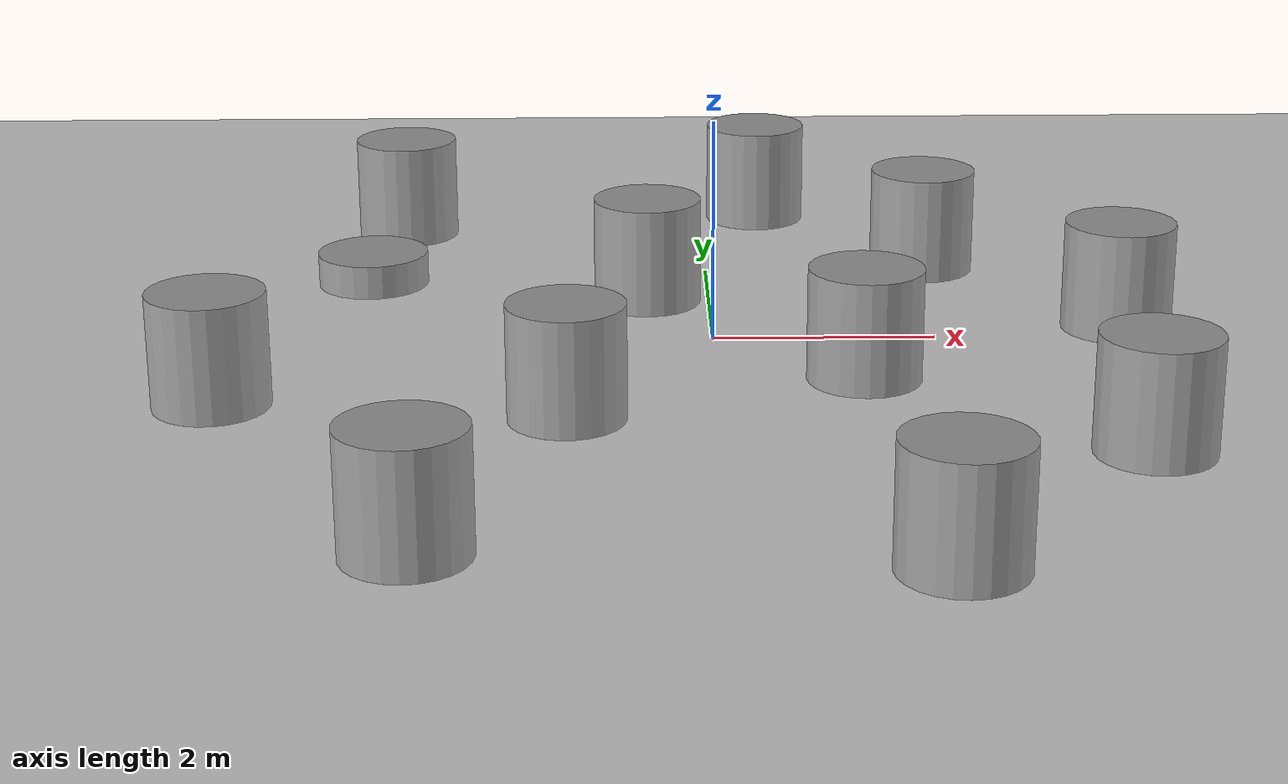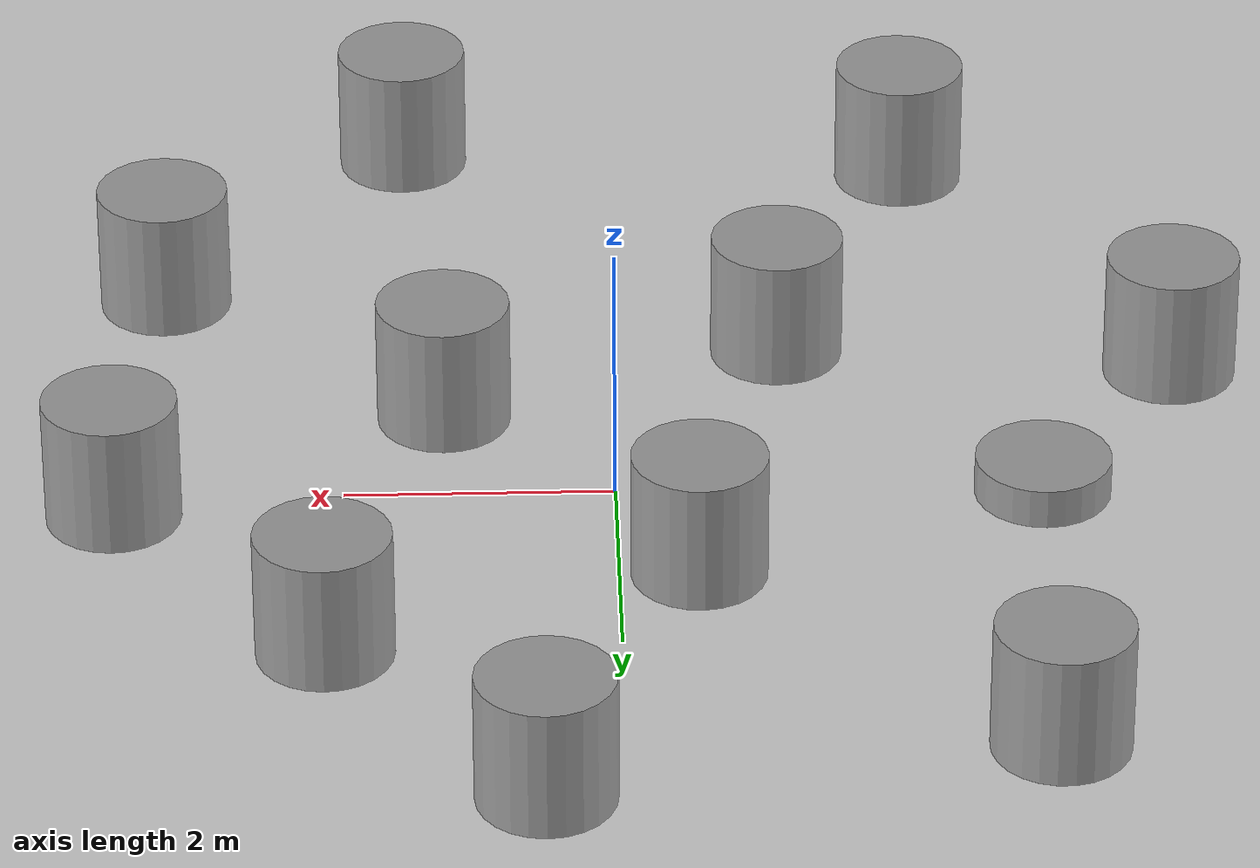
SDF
<sdf version="1.6">
 <world name="default">
  <light name="sun" type="directional">
   <pose>0 0 10 0 -0 0</pose>
   <diffuse>0.8 0.8 0.8 1</diffuse>
   <specular>0.2 0.2 0.2 1</specular>
   <attenuation>
    <range>1000</range>
    <constant>0.9</constant>
    <linear>0.01</linear>
    <quadratic>0.001</quadratic>
   </attenuation>
   <direction>-0.5 0.1 -0.9</direction>
  </light>
  <model name="ground_plane">
   <static>1</static>
   <link name="link">
    <collision name="collision">
     <geometry><plane><normal>0 0 1</normal><size>100 100</size></plane></geometry>
     <surface>
      <contact><collide_bitmask>65535</collide_bitmask></contact>
      <friction><ode><mu>100</mu><mu2>50</mu2></ode></friction>
     </surface>
    </collision>
    <visual name="visual">
     <cast_shadows>0</cast_shadows>
     <geometry><plane><normal>0 0 1</normal><size>100 100</size></plane></geometry>
     <material>
      <script><uri>file://media/materials/scripts/gazebo.material</uri><name>Gazebo/Grey</name></script>
     </material>
    </visual>
   </link>
  </model>
  <gravity>0 0 -9.8</gravity>
  <magnetic_field>6e-06 2.3e-05 -4.2e-05</magnetic_field>
  <atmosphere type="adiabatic"/>
  <physics name="default_physics" default="0" type="ode">
   <max_step_size>0.001</max_step_size>
   <real_time_factor>1</real_time_factor>
   <real_time_update_rate>1000</real_time_update_rate>
  </physics>
  <scene><ambient>0.4 0.4 0.4 1</ambient><background>0.7 0.7 0.7 1</background><shadows>1</shadows></scene>
  <spherical_coordinates>
   <surface_model>EARTH_WGS84</surface_model>
   <latitude_deg>0</latitude_deg>
   <longitude_deg>0</longitude_deg>
   <elevation>0</elevation>
   <heading_deg>0</heading_deg>
  </spherical_coordinates>
  <model name="unit_cylinder">
   <pose>-3.09842 0.624813 0.499993 -3e-06 3e-06 -0.005871</pose>
   <link name="link">
    <inertial>
     <mass>1</mass>
     <inertia><ixx>0.145833</ixx><ixy>0</ixy><ixz>0</ixz><iyy>0.145833</iyy><iyz>0</iyz><izz>0.125</izz></inertia>
    </inertial>
    <collision name="collision">
     <geometry><cylinder><radius>0.5</radius><length>0.3</length></cylinder></geometry>
    </collision>
    <visual name="visual">
     <geometry><cylinder><radius>0.5</radius><length>0.3</length></cylinder></geometry>
     <material>
      <script><name>Gazebo/Grey</name><uri>file://media/materials/scripts/gazebo.material</uri></script>
     </material>
    </visual>
   </link>
  </model>
  <model name="unit_cylinder_clone">
   <pose>-0.581499 1.10752 0.499992 -3e-06 -3e-06 0.050609</pose>
   <link name="link">
    <inertial>
     <mass>1</mass>
     <inertia><ixx>0.145833</ixx><ixy>0</ixy><ixz>0</ixz><iyy>0.145833</iyy><iyz>0</iyz><izz>0.125</izz></inertia>
    </inertial>
    <collision name="collision">
     <geometry><cylinder><radius>0.5</radius><length>1</length></cylinder></geometry>
    </collision>
    <visual name="visual">
     <geometry><cylinder><radius>0.5</radius><length>1</length></cylinder></geometry>
     <material>
      <script><name>Gazebo/Grey</name><uri>file://media/materials/scripts/gazebo.material</uri></script>
     </material>
    </visual>
   </link>
  </model>
  <model name="unit_cylinder_clone_0">
   <pose>-1.27134 -1.98335 0.499993 -3e-06 -3e-06 -0.098793</pose>
   <link name="link">
    <inertial>
     <mass>1</mass>
     <inertia><ixx>0.145833</ixx><ixy>0</ixy><ixz>0</ixz><iyy>0.145833</iyy><iyz>0</iyz><izz>0.125</izz></inertia>
    </inertial>
    <collision name="collision">
     <geometry><cylinder><radius>0.5</radius><length>1</length></cylinder></geometry>
    </collision>
    <visual name="visual">
     <geometry><cylinder><radius>0.5</radius><length>1</length></cylinder></geometry>
     <material>
      <script><name>Gazebo/Grey</name><uri>file://media/materials/scripts/gazebo.material</uri></script>
     </material>
    </visual>
   </link>
  </model>
  <model name="unit_cylinder_clone_1">
   <pose>1.26243 -1.08354 0.499993 -3e-06 4e-06 0</pose>
   <link name="link">
    <inertial>
     <mass>1</mass>
     <inertia><ixx>0.145833</ixx><ixy>0</ixy><ixz>0</ixz><iyy>0.145833</iyy><iyz>0</iyz><izz>0.125</izz></inertia>
    </inertial>
    <collision name="collision">
     <geometry><cylinder><radius>0.5</radius><length>1</length></cylinder></geometry>
    </collision>
    <visual name="visual">
     <geometry><cylinder><radius>0.5</radius><length>1</length></cylinder></geometry>
     <material>
      <script><name>Gazebo/Grey</name><uri>file://media/materials/scripts/gazebo.material</uri></script>
     </material>
    </visual>
   </link>
  </model>
  <model name="unit_cylinder_clone_2">
   <pose>-4.24311 -1.61356 0.499993 -4e-06 1e-06 -0.083534</pose>
   <link name="link">
    <inertial>
     <mass>1</mass>
     <inertia><ixx>0.145833</ixx><ixy>0</ixy><ixz>0</ixz><iyy>0.145833</iyy><iyz>0</iyz><izz>0.125</izz></inertia>
    </inertial>
    <collision name="collision">
     <geometry><cylinder><radius>0.5</radius><length>1</length></cylinder></geometry>
    </collision>
    <visual name="visual">
     <geometry><cylinder><radius>0.5</radius><length>1</length></cylinder></geometry>
     <material>
      <script><name>Gazebo/Grey</name><uri>file://media/materials/scripts/gazebo.material</uri></script>
     </material>
    </visual>
   </link>
  </model>
  <model name="unit_cylinder_clone_3">
   <pose>1.58482 -5.01206 0.499994 -3e-06 -2e-06 0</pose>
   <link name="link">
    <inertial>
     <mass>1</mass>
     <inertia><ixx>0.145833</ixx><ixy>0</ixy><ixz>0</ixz><iyy>0.145833</iyy><iyz>0</iyz><izz>0.125</izz></inertia>
    </inertial>
    <collision name="collision">
     <geometry><cylinder><radius>0.5</radius><length>1</length></cylinder></geometry>
    </collision>
    <visual name="visual">
     <geometry><cylinder><radius>0.5</radius><length>1</length></cylinder></geometry>
     <material>
      <script><name>Gazebo/Grey</name><uri>file://media/materials/scripts/gazebo.material</uri></script>
     </material>
    </visual>
   </link>
  </model>
  <model name="unit_cylinder_clone_4">
   <pose>-2.36039 -4.6755 0.499992 -3e-06 2e-06 0</pose>
   <link name="link">
    <inertial>
     <mass>1</mass>
     <inertia><ixx>0.145833</ixx><ixy>0</ixy><ixz>0</ixz><iyy>0.145833</iyy><iyz>0</iyz><izz>0.125</izz></inertia>
    </inertial>
    <collision name="collision">
     <geometry><cylinder><radius>0.5</radius><length>1</length></cylinder></geometry>
    </collision>
    <visual name="visual">
     <geometry><cylinder><radius>0.5</radius><length>1</length></cylinder></geometry>
     <material>
      <script><name>Gazebo/Grey</name><uri>file://media/materials/scripts/gazebo.material</uri></script>
     </material>
    </visual>
   </link>
  </model>
  <model name="unit_cylinder_clone_5">
   <pose>3.40752 -2.83776 0.499998 3e-06 -3e-06 0</pose>
   <link name="link">
    <inertial>
     <mass>1</mass>
     <inertia><ixx>0.145833</ixx><ixy>0</ixy><ixz>0</ixz><iyy>0.145833</iyy><iyz>0</iyz><izz>0.125</izz></inertia>
    </inertial>
    <collision name="collision">
     <geometry><cylinder><radius>0.5</radius><length>1</length></cylinder></geometry>
    </collision>
    <visual name="visual">
     <geometry><cylinder><radius>0.5</radius><length>1</length></cylinder></geometry>
     <material>
      <script><name>Gazebo/Grey</name><uri>file://media/materials/scripts/gazebo.material</uri></script>
     </material>
    </visual>
   </link>
  </model>
  <model name="unit_cylinder_clone_6">
   <pose>2.11181 2.08043 0.499994 -3e-06 -2e-06 0</pose>
   <link name="link">
    <inertial>
     <mass>1</mass>
     <inertia><ixx>0.145833</ixx><ixy>0</ixy><ixz>0</ixz><iyy>0.145833</iyy><iyz>0</iyz><izz>0.125</izz></inertia>
    </inertial>
    <collision name="collision">
     <geometry><cylinder><radius>0.5</radius><length>1</length></cylinder></geometry>
    </collision>
    <visual name="visual">
     <geometry><cylinder><radius>0.5</radius><length>1</length></cylinder></geometry>
     <material>
      <script><name>Gazebo/Grey</name><uri>file://media/materials/scripts/gazebo.material</uri></script>
     </material>
    </visual>
   </link>
  </model>
  <model name="unit_cylinder_clone_7">
   <pose>-3.02224 3.38443 0.499992 -1e-06 -5e-06 -0.389458</pose>
   <link name="link">
    <inertial>
     <mass>1</mass>
     <inertia><ixx>0.145833</ixx><ixy>0</ixy><ixz>0</ixz><iyy>0.145833</iyy><iyz>0</iyz><izz>0.125</izz></inertia>
    </inertial>
    <collision name="collision">
     <geometry><cylinder><radius>0.5</radius><length>1</length></cylinder></geometry>
    </collision>
    <visual name="visual">
     <geometry><cylinder><radius>0.5</radius><length>1</length></cylinder></geometry>
     <material>
      <script><name>Gazebo/Grey</name><uri>file://media/materials/scripts/gazebo.material</uri></script>
     </material>
    </visual>
   </link>
  </model>
  <model name="unit_cylinder_clone_8">
   <pose>3.6878 0.231521 0.499998 3e-06 -2e-06 0</pose>
   <link name="link">
    <inertial>
     <mass>1</mass>
     <inertia><ixx>0.145833</ixx><ixy>0</ixy><ixz>0</ixz><iyy>0.145833</iyy><iyz>0</iyz><izz>0.125</izz></inertia>
    </inertial>
    <collision name="collision">
     <geometry><cylinder><radius>0.5</radius><length>1</length></cylinder></geometry>
    </collision>
    <visual name="visual">
     <geometry><cylinder><radius>0.5</radius><length>1</length></cylinder></geometry>
     <material>
      <script><name>Gazebo/Grey</name><uri>file://media/materials/scripts/gazebo.material</uri></script>
     </material>
    </visual>
   </link>
  </model>
  <model name="unit_cylinder_clone_9">
   <pose>0.565868 3.91052 0.499998 3e-06 -2e-06 0</pose>
   <link name="link">
    <inertial>
     <mass>1</mass>
     <inertia><ixx>0.145833</ixx><ixy>0</ixy><ixz>0</ixz><iyy>0.145833</iyy><iyz>0</iyz><izz>0.125</izz></inertia>
    </inertial>
    <collision name="collision">
     <geometry><cylinder><radius>0.5</radius><length>1</length></cylinder></geometry>
    </collision>
    <visual name="visual">
     <geometry><cylinder><radius>0.5</radius><length>1</length></cylinder></geometry>
     <material>
      <script><name>Gazebo/Grey</name><uri>file://media/materials/scripts/gazebo.material</uri></script>
     </material>
    </visual>
   </link>
  </model>
 </world>
</sdf>
